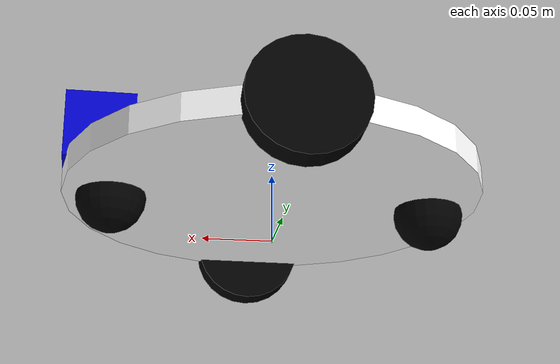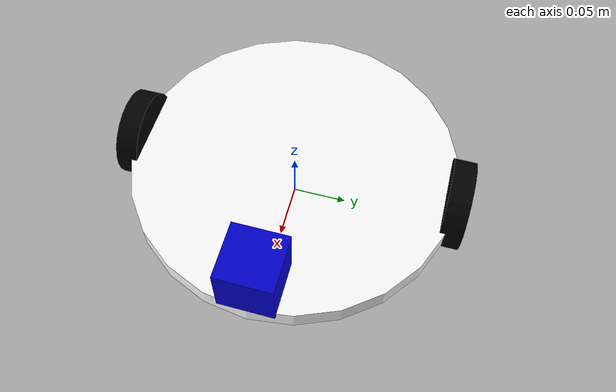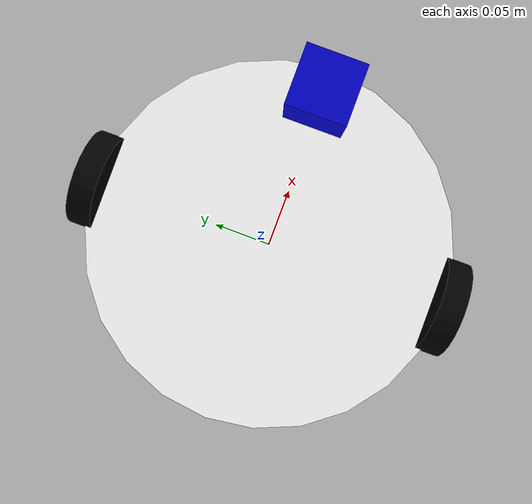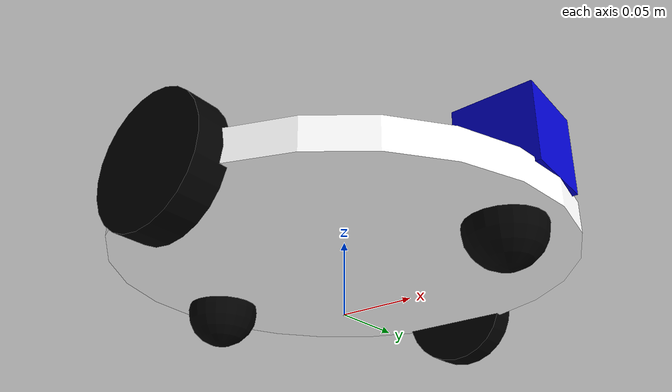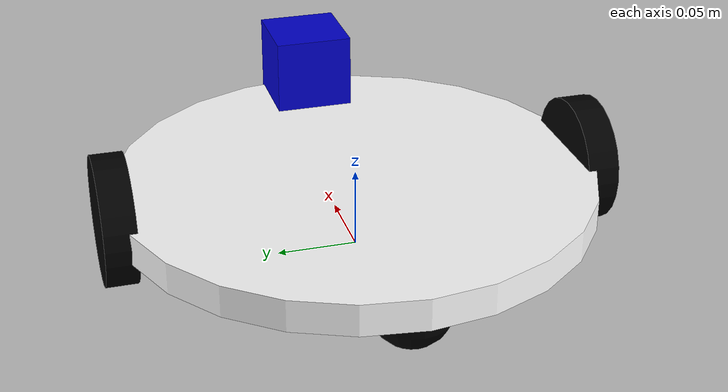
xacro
<?xml version="1.0"?>
<robot name="diff" xmlns:xacro="http://www.ros.org/wiki/xacro">

    <xacro:include filename="$(find diff_description)/urdf/diff.gazebo" />
    <xacro:include filename="$(find diff_description)/urdf/materials.xacro" />
    <xacro:include filename="$(find diff_description)/urdf/wheels.xacro" />

<!--ROBOT-->

<!--PROPERTIES-->
<xacro:property name="M_PI" value="3.14159"/>
<xacro:property name="M_PI_2" value="1.57079"/>
<xacro:property name="DEG_TO_RAD" value="0.017453"/>

<xacro:property name="base_height" value="0.02"/>
<xacro:property name="base_radius" value="0.15"/>
<xacro:property name="base_mass" value="5"/>

<xacro:property name="caster_f_height" value="0.04"/>
<xacro:property name="caster_f_radius" value="0.025"/>
<xacro:property name="caster_f_mass" value="0.5"/>

<xacro:property name="caster_b_height" value="0.04"/>
<xacro:property name="caster_b_radius" value="0.025"/>
<xacro:property name="caster_b_mass" value="0.5"/>

<xacro:property name="wheel_height" value="0.02"/>
<xacro:property name="wheel_radius" value="0.04"/>
<xacro:property name="wheel_mass" value="2.5"/>

<xacro:property name="base_x_origin_to_wheel_origin" value="0.25"/>
<xacro:property name="base_y_origin_to_wheel_origin" value="0.3"/>
<xacro:property name="base_z_origin_to_wheel_origin" value="0.0"/>

<xacro:property name="hokuyo_size" value="0.05"/>

<xacro:macro name="cylinder_inertia" params="m h r">
    <inertia ixx="${m*(3*r*r+h*h)/12}" ixy="0" ixz="0"
    iyy="${m*(3*r*r + h*h)/12}" iyz="0"
    izz="${m*r*r/2}"/>
</xacro:macro>

<link name="base_footprint">
    <inertial>
        <mass value="0.0001"/>
        <origin xyz="0 0 0"/>
        <inertia ixx="0.001" ixy="0.0" ixz="0.0" iyy="0.001" iyz="0.0" izz="0.001"/>
    </inertial>
    <visual>
        <origin xyz="0 0 0" rpy="0 0 0"/>
        <geometry>
            <box size="0.001 0.001 0.001"/>
        </geometry>
    </visual>
</link>

<joint name="base_footprint_joint" type="fixed">
    <origin xyz="0 0 ${wheel_radius - base_z_origin_to_wheel_origin}" rpy="0 0 0"/>
    <parent link="base_footprint"/>
    <child link="base_link"/>
</joint>

<link name="base_link">
    <inertial>
        <mass value="${base_mass}"/>
        <origin xyz="0 0 0"/>
        <xacro:cylinder_inertia m="${base_mass}"
                                r="${base_radius}"
                                h="${base_height}"/>
    </inertial>
    <visual>
        <origin xyz="0 0 0" rpy="0 0 0"/>
        <geometry>
            <cylinder length="${base_height}" radius="${base_radius}"/>
        </geometry>
        <material name="white"/>
    </visual>
    <collision>
        <origin xyz="0 0 0" rpy="0 0 0"/>
        <geometry>
            <cylinder length="${base_height}" radius="${base_radius}"/>
        </geometry>
    </collision>
</link>

<!--CASTER FRONT WHEEL-->
<link name="caster_front_link">
    <inertial>
        <mass value="${caster_f_mass}"/>
        <origin xyz="0 0 0"/>
        <inertia ixx="0.001" ixy="0.0" ixz="0.0" iyy="0.001" iyz="0.0" izz="0.001"/>
    </inertial>
    <visual>
        <origin xyz="0 0.02 0" rpy="${M_PI/2} 0 0"/>
        <geometry>
            <sphere radius="${caster_f_radius}"/>
        </geometry>
        <material name="black"/>
    </visual>
    <collision>
        <origin xyz="0 0.02 0" rpy="0 0 0"/>
        <geometry>
            <sphere radius="${caster_f_radius}"/>
        </geometry>
    </collision>
</link>

<joint name="caster_front_joint" type="continuous">
    <origin xyz="0.115 0 0.007" rpy="${-M_PI/2} 0 0"/>
    <parent link="base_link"/>
    <child link="caster_front_link"/>
</joint>

  <gazebo reference="caster_front_link">
    <turnGravityOff>false</turnGravityOff>
  </gazebo>

<!--CASTER BACK WHEEL-->
<link name="caster_back_link">
    <inertial>
        <mass value="${caster_b_mass}"/>
        <origin xyz="0 0 0"/>
        <inertia ixx="0.001" ixy="0.0" ixz="0.0" iyy="0.001" iyz="0.0" izz="0.001"/>
    </inertial>
    <visual>
        <origin xyz="0 0.02 0" rpy="${M_PI/2} 0 0"/>
        <geometry>
            <sphere radius="${caster_b_radius}"/>
        </geometry>
        <material name="black"/>
    </visual>
    <collision>
        <origin xyz="0.02 0.02 0" rpy="${M_PI/2} 0 0"/>
        <geometry>
            <sphere radius="${caster_b_radius}"/>
        </geometry>
    </collision>
</link>

<joint name="caster_back_joint" type="continuous">
    <origin xyz="-0.115 0 0.005" rpy="${-M_PI/2} 0 0"/>
    <parent link="base_link"/>
    <child link="caster_back_link"/>
</joint>

<!--HOKUYO LINK & HOKUYO-->
<link name="hokuyo_link">
    <visual>
        <origin xyz="0 0 0" rpy="0 0 0"/>
        <geometry>
            <box size="${hokuyo_size} ${hokuyo_size} ${hokuyo_size}"/>
        </geometry>
        <material name="blue"/>
    </visual>
</link>

<joint name="hokuyo_joint" type="fixed">
    <origin xyz="${base_radius - hokuyo_size/2} 0 ${base_height+hokuyo_size/4}" rpy="0 0 0"/>
    <parent link="base_link"/>
    <child link="hokuyo_link"/>
</joint>

    <gazebo reference="hokuyo_link">

        <material>Gazebo/Blue</material>

        <turnGravityOff>true</turnGravityOff>
        <sensor name="hokuyo_laser" type="ray">
            <pose>${hokuyo_size/2} 0 0 0 0 0</pose>
            <visualize>true</visualize>
            <update_rate>40</update_rate>

            <ray>
            <scan>
                <horizontal>
                <samples>720</samples>
                <resolution>1</resolution>
                <min_angle>-1.570796</min_angle>
                <max_angle>1.570796</max_angle>
                </horizontal>
            </scan>
            <range>
                <min>0.1</min>
                <max>10.0</max>
                <resolution>0.01</resolution>
            </range>
            <noise>
                <type>gaussian</type>
                <mean>0.0</mean>
                <stddev>0.01</stddev>
            </noise>
            </ray>

            <plugin name="hokuyo_laser" filename="libgazebo_ros_laser.so">
                <always_on>1</always_on>
                <topicName>/scan</topicName>
                <frameName>hokuyo_link</frameName>
            </plugin>
        </sensor>
    </gazebo>

<!--DRIVER CONTROLLER-->
<gazebo>
    <plugin filename="libgazebo_ros_diff_drive.so" name="differential_drive_controller_front">
        <rosDebugLevel>Debug</rosDebugLevel>
        <publishWheelTF>1</publishWheelTF>
        <robotNamespace>/diff</robotNamespace>
        <publishTf>1</publishTf>
        <publishWheelJointState>false</publishWheelJointState>
        <alwaysOn>true</alwaysOn>
        <updateRate>100.0</updateRate>

        <leftJoint>front_left_wheel_joint</leftJoint>
        <rightJoint>front_right_wheel_joint</rightJoint>

        <wheelSeperation>${2*base_radius}</wheelSeperation>
        <wheelDiameter>${2*wheel_radius}</wheelDiameter>
        <broadcastTF>1</broadcastTF>
        <wheelTorque>30</wheelTorque>
        <wheelAcceleration>1.8</wheelAcceleration>
        <commandTopic>cmd_vel</commandTopic>
        <odometryFrame>odom</odometryFrame>
        <odometryTopic>odom</odometryTopic>
        <robotBaseFrame>base_footprint</robotBaseFrame>

    </plugin>
</gazebo>

</robot>

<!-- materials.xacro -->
<robot>
    <material name="black">
        <color rgba="0.0 0.0 0.0 1.0"/>
    </material>

    <material name="blue">
    <color rgba="0.0 0.0 0.8 1.0"/>
  </material>

  <material name="green">
    <color rgba="0.0 0.8 0.0 1.0"/>
  </material>

  <material name="grey">
    <color rgba="0.2 0.2 0.2 1.0"/>
  </material>

  <material name="orange">
    <color rgba="${255/255} ${108/255} ${10/255} 1.0"/>
  </material>

  <material name="brown">
    <color rgba="${222/255} ${207/255} ${195/255} 1.0"/>
  </material>

  <material name="red">
    <color rgba="0.8 0.0 0.0 1.0"/>
  </material>

  <material name="white">
    <color rgba="1.0 1.0 1.0 1.0"/>
  </material>

</robot>

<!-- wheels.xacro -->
<robot name="wheel"
       xmlns:xacro="http://www.ros.org/wiki/xacro">

<!--BU DOSYA ANA DOSYANIN İÇİNDE OLMALI! ORAYA INCLUDE EDİLECEK!!!!!-->

<!--PROPERTY LIST-->
<!-- pi sayısı -->
<xacro:property  name="M_PI" value="3.1415926535897931"/>

 <!-- PI/2'NİN DEĞERİ RADYAN!!!!! -->
<xacro:property name="M_PI_2" value="1.57079632679"/>

<!-- 1 DERECE KAÇ RADYAN = 0.017 RADYAN -->
<xacro:property name="DEG_TO_RAD" value="0.0174533"/>

<xacro:property name="wh_rad" value="0.04"/>
<xacro:property name="wh_height" value="0.02"/>
<xacro:property name="wh_mass" value="2.5"/>

<xacro:property name="base_x_origin_to_wheel_origin" value="0.25"/> <!-- 25 cm -->
<xacro:property name="base_y_origin_to_wheel_origin" value="0.3"/> <!-- 30 cm ÇAPIN TAMAMI-->
<xacro:property name="base_z_origin_to_wheel_origin" value="0.00"/> <!-- 0 cm -->

<!-- INERTIA MATRIX MACRO -->
<xacro:macro name="cylinder_inertia" params="m h r">
    <inertia ixx="${m*(h*h+3*r*r)/12}" ixy="0.0" ixz="0.0"
             iyy="${m*(h*h+3*r*r)/12}" iyz="0.0"
             izz="${m*r*r/2}"/>
</xacro:macro>

<!--WHEELS MACRO-->
<xacro:macro name="wheel" params="fb lr parent transX transY flipY">
    <link name="${fb}_${lr}_wheel">

        <inertial>
            <mass value="${wh_mass}"/>
            <origin xyz="0 0 0"/>
            <xacro:cylinder_inertia m="${wh_mass}" r="${wh_rad}" h="${wh_height}"/>
        </inertial>

        <visual>
            <origin xyz="0 0 0" rpy="${flipY*M_PI/2} 0 0"/> <!--90 derece dönsün, dik dursun tekerlek. baştta yatay geliyor çünkü.-->
            <geometry>
                <cylinder length="${wh_height}" radius="${wh_rad}"/>
            </geometry>
            <material name="black"/>
        </visual>

        <collision>
            <origin xyz="0 0 0" rpy="${flipY*M_PI/2} 0 0"/>
            <geometry>
                <cylinder length="${wh_height}" radius="${wh_rad}"/>
            </geometry>
        </collision>

    </link>

    <joint name="${fb}_${lr}_wheel_joint" type="continuous"> <!--ANA YAN TEKERLER CONTINUOUS!!!-->
        <parent link="${parent}"/>
        <child link="${fb}_${lr}_wheel"/>
        <origin xyz="${transX * base_x_origin_to_wheel_origin} ${transY * base_y_origin_to_wheel_origin} 0"/>
        <axis xyz="0 1 0" rpy="0 0 0"/> <!--TEKERLEKLER Y ETRAFINDA DÖNECEK-->
        <limit effort="100" velocity="100"/> <!--max 100 m/s-->
        <joint_properties damping="0.0" friction="0.0"/> <!-- eklemde bir sürtünme yok-->
    </joint>

</xacro:macro>

<!--yukarıdaki macro yu çağır: -->
<xacro:wheel fb="front" lr="right" parent="base_link" transX="0" transY="0.5" flipY="1"/>
<xacro:wheel fb="front" lr="left" parent="base_link" transX="0" transY="-0.5" flipY="1"/>

</robot>
